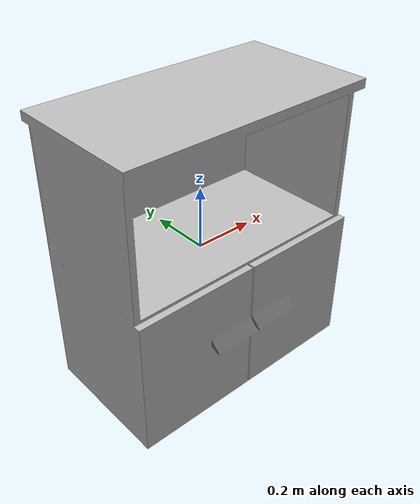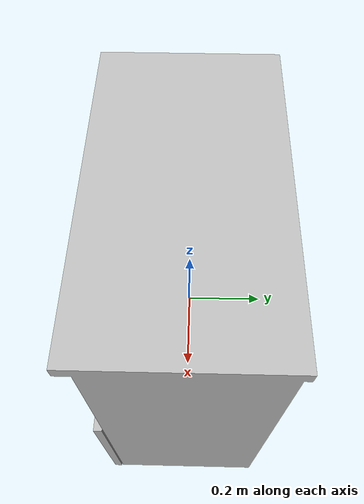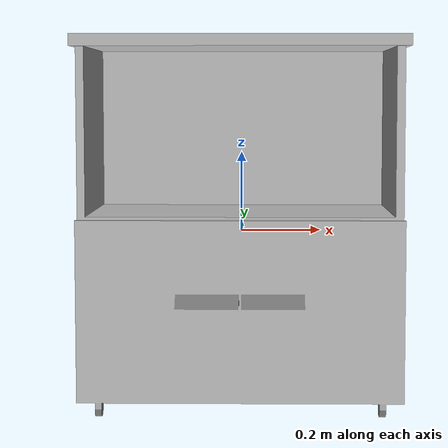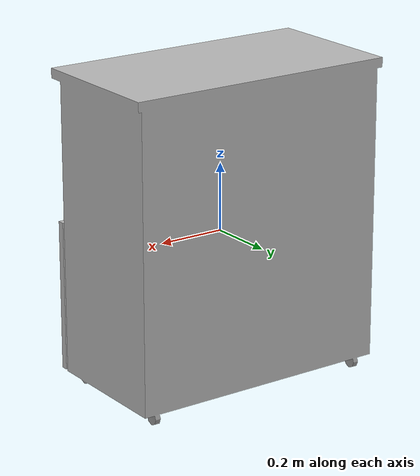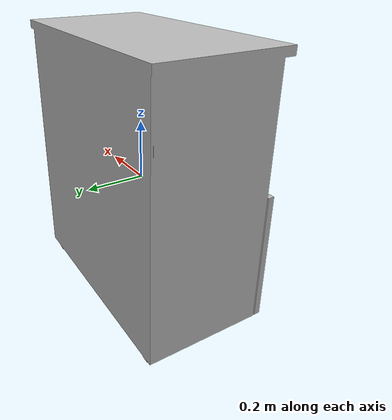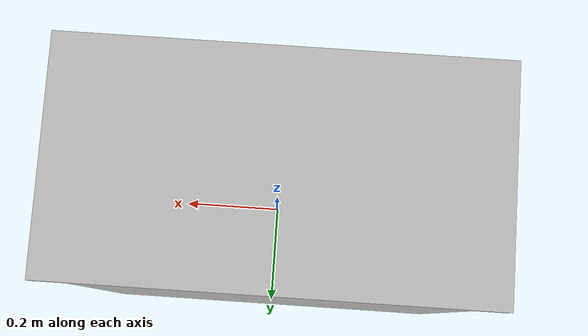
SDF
<?xml version='1.0'?>
<sdf version='1.5'>
  <model name="locker_008">
    <pose>0 0 0 0 0 0</pose>
    <static>false</static>
    <link name='model_body'>
      <visual name="visual">
        <geometry>
          <mesh>
            <uri>model://robert_gazebo/meshes/locker_008_visual.dae</uri>
            <scale>1 1 1</scale>
          </mesh>
         </geometry>
      </visual>

      <collision name="collision">
        <geometry>
          <mesh>
            <uri>model://robert_gazebo/meshes/locker_008_collision.dae</uri>
            <scale>1 1 1</scale>
          </mesh>
        </geometry>
      </collision>

      <inertial>
        <pose> 0 0 0 0 0 0</pose>
        <inertia>
          <ixx>0.69</ixx>
          <ixy>0</ixy>
          <ixz>0</ixz>
          <iyy>1.19</iyy>
          <iyz>0</iyz>
          <izz>0.78</izz>
        </inertia>
        <mass>10.0</mass>
      </inertial>
    </link>
  </model>
</sdf>
